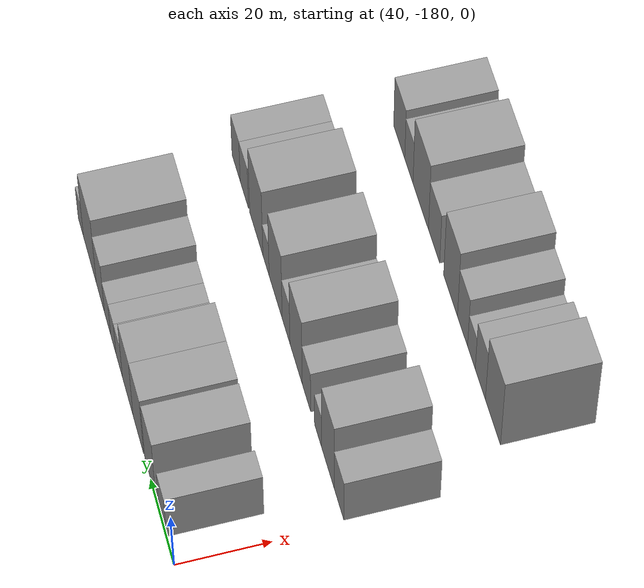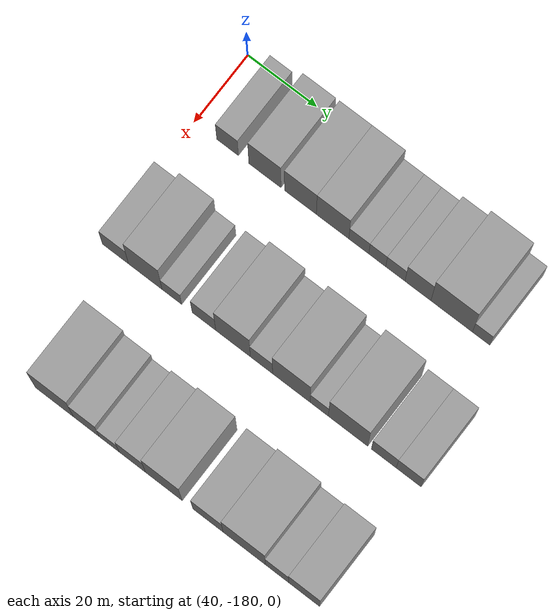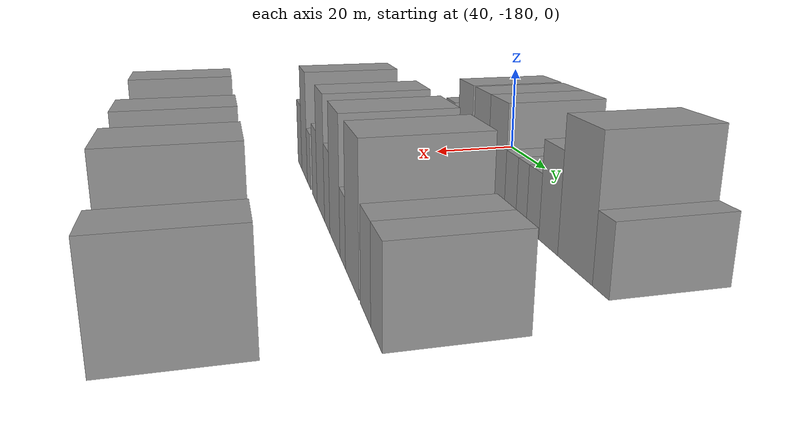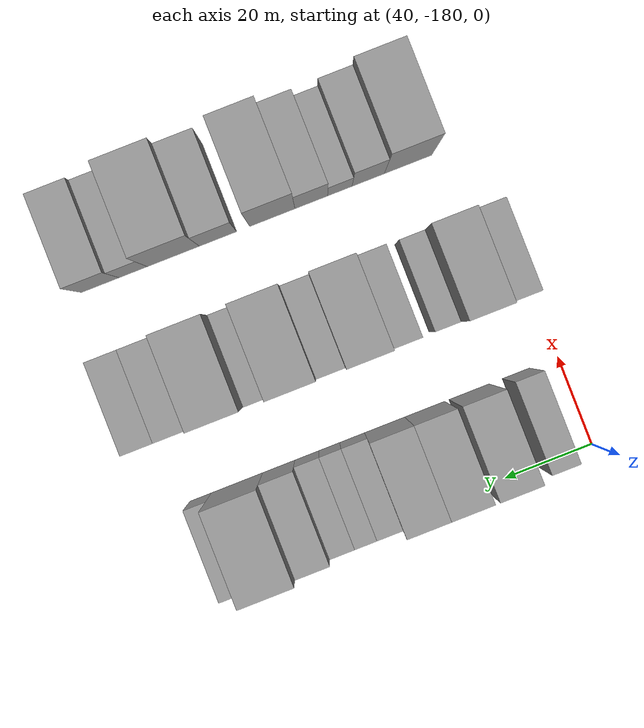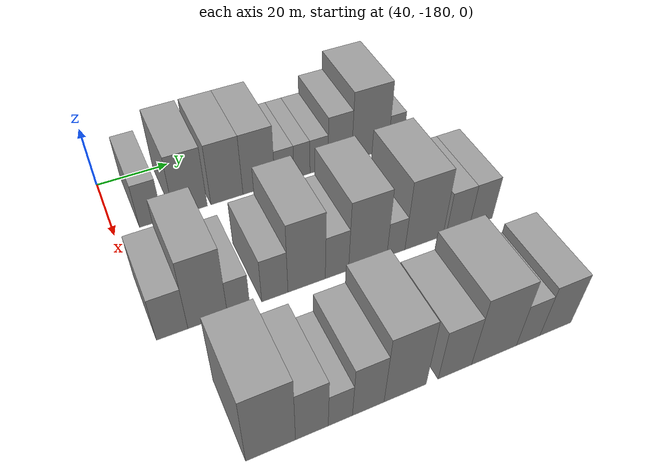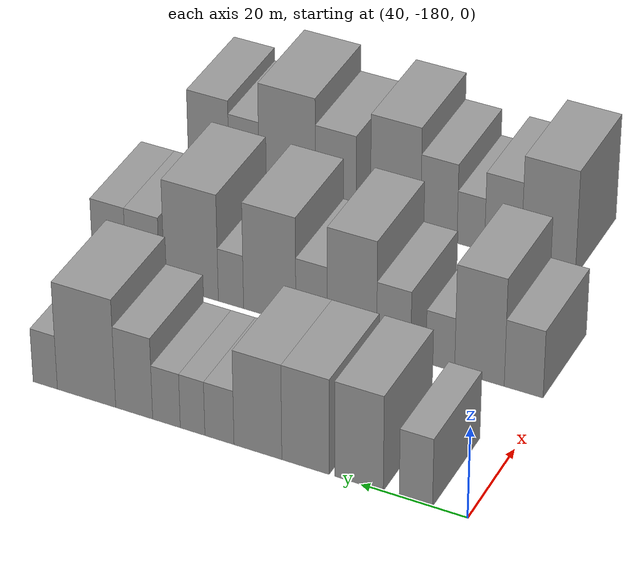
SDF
<sdf version="1.6">
 <world name="default">
  <model name="building_21">
   <static>1</static>
   <pose>50.0000 -170.3118 0 0.000000 0.000000 0.000000</pose>
   <link name="link">
    <pose>0 0 7.50 0 0 0</pose>
    <collision name="collision"><geometry><box><size>20.0000 6.2473 15.0000</size></box></geometry></collision>
    <visual name="visual">
     <cast_shadows>0</cast_shadows>
     <geometry><box><size>20.0000 6.2473 15.0000</size></box></geometry>
     <material>
      <script>
       <uri>model://grey_wall/materials/scripts</uri>
       <uri>model://grey_wall/materials/textures</uri>
       <name>vrc/grey_wall</name>
      </script>
     </material>
    </visual>
   </link>
  </model>
  <model name="building_22">
   <static>1</static>
   <pose>50.0000 -159.5734 0 0.000000 0.000000 0.000000</pose>
   <link name="link">
    <pose>0 0 10.50 0 0 0</pose>
    <collision name="collision"><geometry><box><size>20.0000 9.2295 21.0000</size></box></geometry></collision>
    <visual name="visual">
     <cast_shadows>0</cast_shadows>
     <geometry><box><size>20.0000 9.2295 21.0000</size></box></geometry>
     <material>
      <script>
       <uri>model://grey_wall/materials/scripts</uri>
       <uri>model://grey_wall/materials/textures</uri>
       <name>vrc/grey_wall</name>
      </script>
     </material>
    </visual>
   </link>
  </model>
  <model name="building_23">
   <static>1</static>
   <pose>50.0000 -149.4023 0 0.000000 0.000000 0.000000</pose>
   <link name="link">
    <pose>0 0 10.50 0 0 0</pose>
    <collision name="collision"><geometry><box><size>20.0000 9.1128 21.0000</size></box></geometry></collision>
    <visual name="visual">
     <cast_shadows>0</cast_shadows>
     <geometry><box><size>20.0000 9.1128 21.0000</size></box></geometry>
     <material>
      <script>
       <uri>model://grey_wall/materials/scripts</uri>
       <uri>model://grey_wall/materials/textures</uri>
       <name>vrc/grey_wall</name>
      </script>
     </material>
    </visual>
   </link>
  </model>
  <model name="building_24">
   <static>1</static>
   <pose>50.0000 -140.2071 0 0.000000 0.000000 0.000000</pose>
   <link name="link">
    <pose>0 0 10.50 0 0 0</pose>
    <collision name="collision"><geometry><box><size>20.0000 9.2776 21.0000</size></box></geometry></collision>
    <visual name="visual">
     <cast_shadows>0</cast_shadows>
     <geometry><box><size>20.0000 9.2776 21.0000</size></box></geometry>
     <material>
      <script>
       <uri>model://grey_wall/materials/scripts</uri>
       <uri>model://grey_wall/materials/textures</uri>
       <name>vrc/grey_wall</name>
      </script>
     </material>
    </visual>
   </link>
  </model>
  <model name="building_25">
   <static>1</static>
   <pose>50.0000 -132.7250 0 0.000000 0.000000 0.000000</pose>
   <link name="link">
    <pose>0 0 6.00 0 0 0</pose>
    <collision name="collision"><geometry><box><size>20.0000 5.6866 12.0000</size></box></geometry></collision>
    <visual name="visual">
     <cast_shadows>0</cast_shadows>
     <geometry><box><size>20.0000 5.6866 12.0000</size></box></geometry>
     <material>
      <script>
       <uri>model://grey_wall/materials/scripts</uri>
       <uri>model://grey_wall/materials/textures</uri>
       <name>vrc/grey_wall</name>
      </script>
     </material>
    </visual>
   </link>
  </model>
  <model name="building_26">
   <static>1</static>
   <pose>50.0000 -127.4625 0 0.000000 0.000000 0.000000</pose>
   <link name="link">
    <pose>0 0 6.00 0 0 0</pose>
    <collision name="collision"><geometry><box><size>20.0000 4.8385 12.0000</size></box></geometry></collision>
    <visual name="visual">
     <cast_shadows>0</cast_shadows>
     <geometry><box><size>20.0000 4.8385 12.0000</size></box></geometry>
     <material>
      <script>
       <uri>model://grey_wall/materials/scripts</uri>
       <uri>model://grey_wall/materials/textures</uri>
       <name>vrc/grey_wall</name>
      </script>
     </material>
    </visual>
   </link>
  </model>
  <model name="building_27">
   <static>1</static>
   <pose>50.0000 -122.3108 0 0.000000 0.000000 0.000000</pose>
   <link name="link">
    <pose>0 0 6.00 0 0 0</pose>
    <collision name="collision"><geometry><box><size>20.0000 5.4649 12.0000</size></box></geometry></collision>
    <visual name="visual">
     <cast_shadows>0</cast_shadows>
     <geometry><box><size>20.0000 5.4649 12.0000</size></box></geometry>
     <material>
      <script>
       <uri>model://grey_wall/materials/scripts</uri>
       <uri>model://grey_wall/materials/textures</uri>
       <name>vrc/grey_wall</name>
      </script>
     </material>
    </visual>
   </link>
  </model>
  <model name="building_28">
   <static>1</static>
   <pose>50.0000 -115.8985 0 0.000000 0.000000 0.000000</pose>
   <link name="link">
    <pose>0 0 9.00 0 0 0</pose>
    <collision name="collision"><geometry><box><size>20.0000 7.3597 18.0000</size></box></geometry></collision>
    <visual name="visual">
     <cast_shadows>0</cast_shadows>
     <geometry><box><size>20.0000 7.3597 18.0000</size></box></geometry>
     <material>
      <script>
       <uri>model://grey_wall/materials/scripts</uri>
       <uri>model://grey_wall/materials/textures</uri>
       <name>vrc/grey_wall</name>
      </script>
     </material>
    </visual>
   </link>
  </model>
  <model name="building_29">
   <static>1</static>
   <pose>50.0000 -106.3487 0 0.000000 0.000000 0.000000</pose>
   <link name="link">
    <pose>0 0 12.00 0 0 0</pose>
    <collision name="collision"><geometry><box><size>20.0000 11.7398 24.0000</size></box></geometry></collision>
    <visual name="visual">
     <cast_shadows>0</cast_shadows>
     <geometry><box><size>20.0000 11.7398 24.0000</size></box></geometry>
     <material>
      <script>
       <uri>model://grey_wall/materials/scripts</uri>
       <uri>model://grey_wall/materials/textures</uri>
       <name>vrc/grey_wall</name>
      </script>
     </material>
    </visual>
   </link>
  </model>
  <model name="building_30">
   <static>1</static>
   <pose>50.0000 -98.0165 0 0.000000 0.000000 0.000000</pose>
   <link name="link">
    <pose>0 0 6.00 0 0 0</pose>
    <collision name="collision"><geometry><box><size>20.0000 4.9245 12.0000</size></box></geometry></collision>
    <visual name="visual">
     <cast_shadows>0</cast_shadows>
     <geometry><box><size>20.0000 4.9245 12.0000</size></box></geometry>
     <material>
      <script>
       <uri>model://grey_wall/materials/scripts</uri>
       <uri>model://grey_wall/materials/textures</uri>
       <name>vrc/grey_wall</name>
      </script>
     </material>
    </visual>
   </link>
  </model>
  <model name="building_95">
   <static>1</static>
   <pose>85.0000 -175.2722 0 0.000000 0.000000 0.000000</pose>
   <link name="link">
    <pose>0 0 7.50 0 0 0</pose>
    <collision name="collision"><geometry><box><size>20.0000 7.4851 15.0000</size></box></geometry></collision>
    <visual name="visual">
     <cast_shadows>0</cast_shadows>
     <geometry><box><size>20.0000 7.4851 15.0000</size></box></geometry>
     <material>
      <script>
       <uri>model://grey_wall/materials/scripts</uri>
       <uri>model://grey_wall/materials/textures</uri>
       <name>vrc/grey_wall</name>
      </script>
     </material>
    </visual>
   </link>
  </model>
  <model name="building_96">
   <static>1</static>
   <pose>85.0000 -166.7127 0 0.000000 0.000000 0.000000</pose>
   <link name="link">
    <pose>0 0 12.00 0 0 0</pose>
    <collision name="collision"><geometry><box><size>20.0000 9.6341 24.0000</size></box></geometry></collision>
    <visual name="visual">
     <cast_shadows>0</cast_shadows>
     <geometry><box><size>20.0000 9.6341 24.0000</size></box></geometry>
     <material>
      <script>
       <uri>model://grey_wall/materials/scripts</uri>
       <uri>model://grey_wall/materials/textures</uri>
       <name>vrc/grey_wall</name>
      </script>
     </material>
    </visual>
   </link>
  </model>
  <model name="building_97">
   <static>1</static>
   <pose>85.0000 -159.0897 0 0.000000 0.000000 0.000000</pose>
   <link name="link">
    <pose>0 0 6.00 0 0 0</pose>
    <collision name="collision"><geometry><box><size>20.0000 5.6119 12.0000</size></box></geometry></collision>
    <visual name="visual">
     <cast_shadows>0</cast_shadows>
     <geometry><box><size>20.0000 5.6119 12.0000</size></box></geometry>
     <material>
      <script>
       <uri>model://grey_wall/materials/scripts</uri>
       <uri>model://grey_wall/materials/textures</uri>
       <name>vrc/grey_wall</name>
      </script>
     </material>
    </visual>
   </link>
  </model>
  <model name="building_98">
   <static>1</static>
   <pose>85.0000 -149.9113 0 0.000000 0.000000 0.000000</pose>
   <link name="link">
    <pose>0 0 7.50 0 0 0</pose>
    <collision name="collision"><geometry><box><size>20.0000 6.7449 15.0000</size></box></geometry></collision>
    <visual name="visual">
     <cast_shadows>0</cast_shadows>
     <geometry><box><size>20.0000 6.7449 15.0000</size></box></geometry>
     <material>
      <script>
       <uri>model://grey_wall/materials/scripts</uri>
       <uri>model://grey_wall/materials/textures</uri>
       <name>vrc/grey_wall</name>
      </script>
     </material>
    </visual>
   </link>
  </model>
  <model name="building_99">
   <static>1</static>
   <pose>85.0000 -141.6126 0 0.000000 0.000000 0.000000</pose>
   <link name="link">
    <pose>0 0 12.00 0 0 0</pose>
    <collision name="collision"><geometry><box><size>20.0000 9.8526 24.0000</size></box></geometry></collision>
    <visual name="visual">
     <cast_shadows>0</cast_shadows>
     <geometry><box><size>20.0000 9.8526 24.0000</size></box></geometry>
     <material>
      <script>
       <uri>model://grey_wall/materials/scripts</uri>
       <uri>model://grey_wall/materials/textures</uri>
       <name>vrc/grey_wall</name>
      </script>
     </material>
    </visual>
   </link>
  </model>
  <model name="building_100">
   <static>1</static>
   <pose>85.0000 -133.5320 0 0.000000 0.000000 0.000000</pose>
   <link name="link">
    <pose>0 0 7.50 0 0 0</pose>
    <collision name="collision"><geometry><box><size>20.0000 6.3085 15.0000</size></box></geometry></collision>
    <visual name="visual">
     <cast_shadows>0</cast_shadows>
     <geometry><box><size>20.0000 6.3085 15.0000</size></box></geometry>
     <material>
      <script>
       <uri>model://grey_wall/materials/scripts</uri>
       <uri>model://grey_wall/materials/textures</uri>
       <name>vrc/grey_wall</name>
      </script>
     </material>
    </visual>
   </link>
  </model>
  <model name="building_101">
   <static>1</static>
   <pose>85.0000 -125.0605 0 0.000000 0.000000 0.000000</pose>
   <link name="link">
    <pose>0 0 12.00 0 0 0</pose>
    <collision name="collision"><geometry><box><size>20.0000 10.6345 24.0000</size></box></geometry></collision>
    <visual name="visual">
     <cast_shadows>0</cast_shadows>
     <geometry><box><size>20.0000 10.6345 24.0000</size></box></geometry>
     <material>
      <script>
       <uri>model://grey_wall/materials/scripts</uri>
       <uri>model://grey_wall/materials/textures</uri>
       <name>vrc/grey_wall</name>
      </script>
     </material>
    </visual>
   </link>
  </model>
  <model name="building_102">
   <static>1</static>
   <pose>85.0000 -117.1557 0 0.000000 0.000000 0.000000</pose>
   <link name="link">
    <pose>0 0 6.00 0 0 0</pose>
    <collision name="collision"><geometry><box><size>20.0000 5.1753 12.0000</size></box></geometry></collision>
    <visual name="visual">
     <cast_shadows>0</cast_shadows>
     <geometry><box><size>20.0000 5.1753 12.0000</size></box></geometry>
     <material>
      <script>
       <uri>model://grey_wall/materials/scripts</uri>
       <uri>model://grey_wall/materials/textures</uri>
       <name>vrc/grey_wall</name>
      </script>
     </material>
    </visual>
   </link>
  </model>
  <model name="building_103">
   <static>1</static>
   <pose>85.0000 -109.0142 0 0.000000 0.000000 0.000000</pose>
   <link name="link">
    <pose>0 0 12.00 0 0 0</pose>
    <collision name="collision"><geometry><box><size>20.0000 11.1077 24.0000</size></box></geometry></collision>
    <visual name="visual">
     <cast_shadows>0</cast_shadows>
     <geometry><box><size>20.0000 11.1077 24.0000</size></box></geometry>
     <material>
      <script>
       <uri>model://grey_wall/materials/scripts</uri>
       <uri>model://grey_wall/materials/textures</uri>
       <name>vrc/grey_wall</name>
      </script>
     </material>
    </visual>
   </link>
  </model>
  <model name="building_104">
   <static>1</static>
   <pose>85.0000 -98.9507 0 0.000000 0.000000 0.000000</pose>
   <link name="link">
    <pose>0 0 7.50 0 0 0</pose>
    <collision name="collision"><geometry><box><size>20.0000 7.0193 15.0000</size></box></geometry></collision>
    <visual name="visual">
     <cast_shadows>0</cast_shadows>
     <geometry><box><size>20.0000 7.0193 15.0000</size></box></geometry>
     <material>
      <script>
       <uri>model://grey_wall/materials/scripts</uri>
       <uri>model://grey_wall/materials/textures</uri>
       <name>vrc/grey_wall</name>
      </script>
     </material>
    </visual>
   </link>
  </model>
  <model name="building_105">
   <static>1</static>
   <pose>85.0000 -91.9428 0 0.000000 0.000000 0.000000</pose>
   <link name="link">
    <pose>0 0 7.50 0 0 0</pose>
    <collision name="collision"><geometry><box><size>20.0000 6.9965 15.0000</size></box></geometry></collision>
    <visual name="visual">
     <cast_shadows>0</cast_shadows>
     <geometry><box><size>20.0000 6.9965 15.0000</size></box></geometry>
     <material>
      <script>
       <uri>model://grey_wall/materials/scripts</uri>
       <uri>model://grey_wall/materials/textures</uri>
       <name>vrc/grey_wall</name>
      </script>
     </material>
    </visual>
   </link>
  </model>
  <model name="building_181">
   <static>1</static>
   <pose>120.0000 -165.1879 0 0.000000 0.000000 0.000000</pose>
   <link name="link">
    <pose>0 0 12.00 0 0 0</pose>
    <collision name="collision"><geometry><box><size>20.0000 10.9109 24.0000</size></box></geometry></collision>
    <visual name="visual">
     <cast_shadows>0</cast_shadows>
     <geometry><box><size>20.0000 10.9109 24.0000</size></box></geometry>
     <material>
      <script>
       <uri>model://grey_wall/materials/scripts</uri>
       <uri>model://grey_wall/materials/textures</uri>
       <name>vrc/grey_wall</name>
      </script>
     </material>
    </visual>
   </link>
  </model>
  <model name="building_182">
   <static>1</static>
   <pose>120.0000 -156.0302 0 0.000000 0.000000 0.000000</pose>
   <link name="link">
    <pose>0 0 9.00 0 0 0</pose>
    <collision name="collision"><geometry><box><size>20.0000 7.4045 18.0000</size></box></geometry></collision>
    <visual name="visual">
     <cast_shadows>0</cast_shadows>
     <geometry><box><size>20.0000 7.4045 18.0000</size></box></geometry>
     <material>
      <script>
       <uri>model://grey_wall/materials/scripts</uri>
       <uri>model://grey_wall/materials/textures</uri>
       <name>vrc/grey_wall</name>
      </script>
     </material>
    </visual>
   </link>
  </model>
  <model name="building_183">
   <static>1</static>
   <pose>120.0000 -149.5223 0 0.000000 0.000000 0.000000</pose>
   <link name="link">
    <pose>0 0 6.00 0 0 0</pose>
    <collision name="collision"><geometry><box><size>20.0000 5.6113 12.0000</size></box></geometry></collision>
    <visual name="visual">
     <cast_shadows>0</cast_shadows>
     <geometry><box><size>20.0000 5.6113 12.0000</size></box></geometry>
     <material>
      <script>
       <uri>model://grey_wall/materials/scripts</uri>
       <uri>model://grey_wall/materials/textures</uri>
       <name>vrc/grey_wall</name>
      </script>
     </material>
    </visual>
   </link>
  </model>
  <model name="building_184">
   <static>1</static>
   <pose>120.0000 -142.9620 0 0.000000 0.000000 0.000000</pose>
   <link name="link">
    <pose>0 0 9.00 0 0 0</pose>
    <collision name="collision"><geometry><box><size>20.0000 7.5093 18.0000</size></box></geometry></collision>
    <visual name="visual">
     <cast_shadows>0</cast_shadows>
     <geometry><box><size>20.0000 7.5093 18.0000</size></box></geometry>
     <material>
      <script>
       <uri>model://grey_wall/materials/scripts</uri>
       <uri>model://grey_wall/materials/textures</uri>
       <name>vrc/grey_wall</name>
      </script>
     </material>
    </visual>
   </link>
  </model>
  <model name="building_185">
   <static>1</static>
   <pose>120.0000 -134.0326 0 0.000000 0.000000 0.000000</pose>
   <link name="link">
    <pose>0 0 12.00 0 0 0</pose>
    <collision name="collision"><geometry><box><size>20.0000 10.3497 24.0000</size></box></geometry></collision>
    <visual name="visual">
     <cast_shadows>0</cast_shadows>
     <geometry><box><size>20.0000 10.3497 24.0000</size></box></geometry>
     <material>
      <script>
       <uri>model://grey_wall/materials/scripts</uri>
       <uri>model://grey_wall/materials/textures</uri>
       <name>vrc/grey_wall</name>
      </script>
     </material>
    </visual>
   </link>
  </model>
  <model name="building_186">
   <static>1</static>
   <pose>120.0000 -121.5891 0 0.000000 0.000000 0.000000</pose>
   <link name="link">
    <pose>0 0 9.00 0 0 0</pose>
    <collision name="collision"><geometry><box><size>20.0000 8.5373 18.0000</size></box></geometry></collision>
    <visual name="visual">
     <cast_shadows>0</cast_shadows>
     <geometry><box><size>20.0000 8.5373 18.0000</size></box></geometry>
     <material>
      <script>
       <uri>model://grey_wall/materials/scripts</uri>
       <uri>model://grey_wall/materials/textures</uri>
       <name>vrc/grey_wall</name>
      </script>
     </material>
    </visual>
   </link>
  </model>
  <model name="building_187">
   <static>1</static>
   <pose>120.0000 -111.3511 0 0.000000 0.000000 0.000000</pose>
   <link name="link">
    <pose>0 0 12.00 0 0 0</pose>
    <collision name="collision"><geometry><box><size>20.0000 11.9386 24.0000</size></box></geometry></collision>
    <visual name="visual">
     <cast_shadows>0</cast_shadows>
     <geometry><box><size>20.0000 11.9386 24.0000</size></box></geometry>
     <material>
      <script>
       <uri>model://grey_wall/materials/scripts</uri>
       <uri>model://grey_wall/materials/textures</uri>
       <name>vrc/grey_wall</name>
      </script>
     </material>
    </visual>
   </link>
  </model>
  <model name="building_188">
   <static>1</static>
   <pose>120.0000 -102.1616 0 0.000000 0.000000 0.000000</pose>
   <link name="link">
    <pose>0 0 7.50 0 0 0</pose>
    <collision name="collision"><geometry><box><size>20.0000 6.4404 15.0000</size></box></geometry></collision>
    <visual name="visual">
     <cast_shadows>0</cast_shadows>
     <geometry><box><size>20.0000 6.4404 15.0000</size></box></geometry>
     <material>
      <script>
       <uri>model://grey_wall/materials/scripts</uri>
       <uri>model://grey_wall/materials/textures</uri>
       <name>vrc/grey_wall</name>
      </script>
     </material>
    </visual>
   </link>
  </model>
  <model name="building_189">
   <static>1</static>
   <pose>120.0000 -94.5759 0 0.000000 0.000000 0.000000</pose>
   <link name="link">
    <pose>0 0 9.00 0 0 0</pose>
    <collision name="collision"><geometry><box><size>20.0000 8.7311 18.0000</size></box></geometry></collision>
    <visual name="visual">
     <cast_shadows>0</cast_shadows>
     <geometry><box><size>20.0000 8.7311 18.0000</size></box></geometry>
     <material>
      <script>
       <uri>model://grey_wall/materials/scripts</uri>
       <uri>model://grey_wall/materials/textures</uri>
       <name>vrc/grey_wall</name>
      </script>
     </material>
    </visual>
   </link>
  </model>
 </world>
</sdf>
